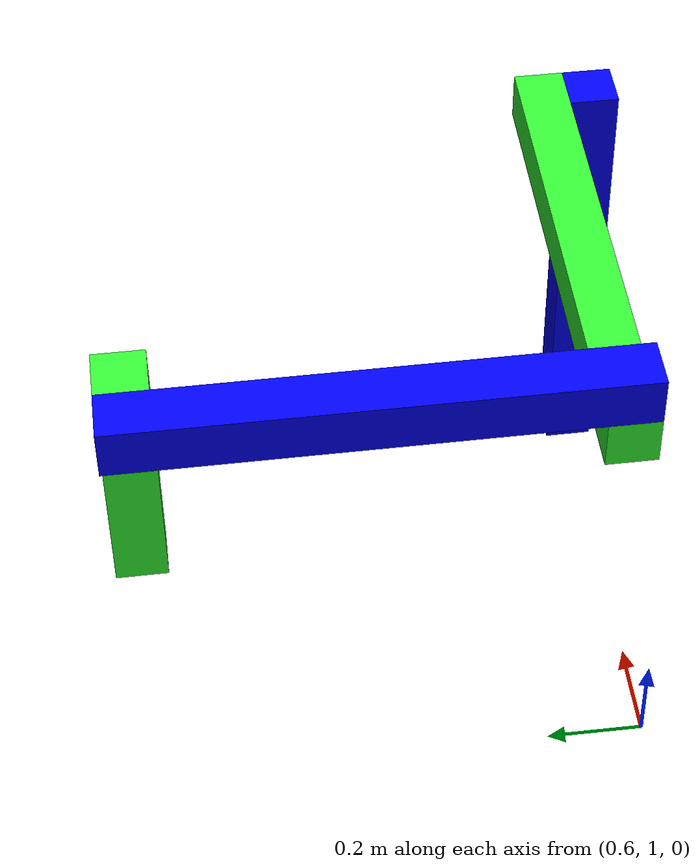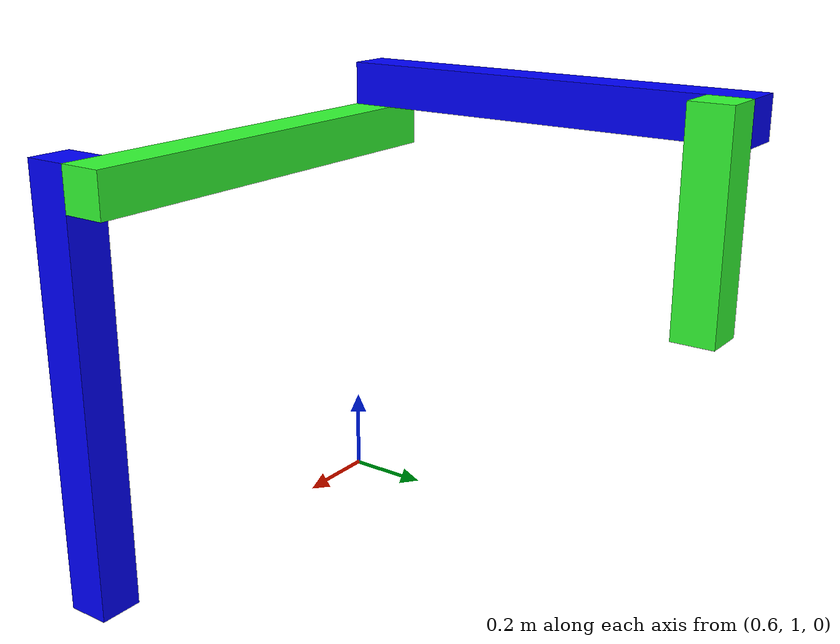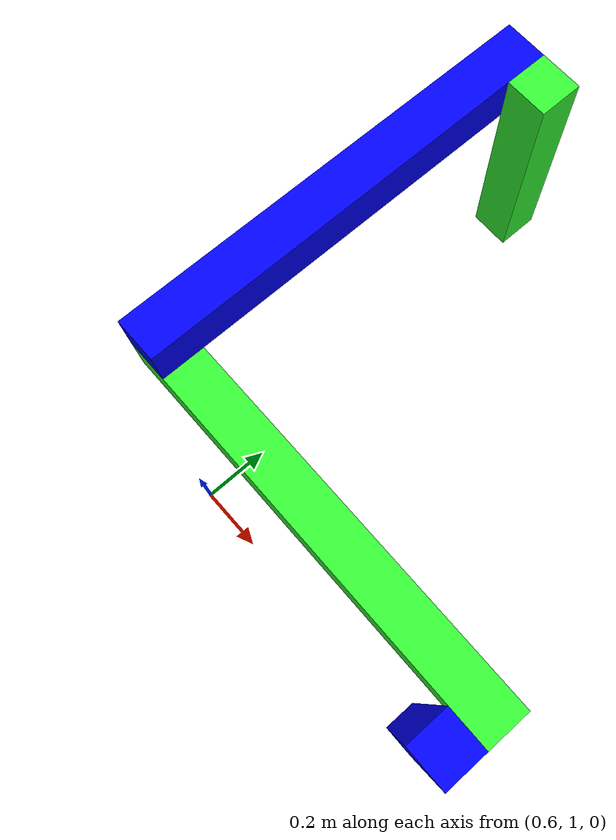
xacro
<?xml version="1.0"?>
<robot xmlns:xacro="http://www.ros.org/wiki/xacro" name="cartesian">

    <xacro:include filename="urdf_include.xacro" />

    <link name="world" />
    <joint name="joint1" type="fixed">
        <parent link="world" />
        <child link="joint1_link" />
        <origin xyz="1.5 1.0 0.5" rpy="0 0 0" />
        <limit lower="0" upper="0.5" velocity="100" effort="100"/>
    </joint>

    <xacro:property name="arm_length" value="1" />
    <link name="joint1_link">
        <visual>
            <origin rpy="0 0 0" xyz="0 0 0" />
            <geometry>
                <box size="0.1 0.1 ${arm_length}" />
            </geometry>
            <material name="blue">
                <color rgba="0 0 1 1" />
            </material>
        </visual>
        <collision>
            <origin rpy="0 0 0" xyz="0 0 0" />
            <geometry>
                <box size="0.1 0.1 ${arm_length}" />
            </geometry>
        </collision>
    </link>

    <joint name="joint2" type="prismatic">
        <origin xyz="-0.45 0.1  0.45" rpy="0 0 0" />
        <parent link="joint1_link" />
        <child link="joint2_link" />
        <axis xyz="1 0 0"/>
        <limit effort="100" velocity="1" lower="0" upper="0.8" />
    </joint>
    <link name="joint2_link">
        <visual>
            <origin rpy="0 0 0" xyz="0 0 0" />
            <geometry>
                <box size="${arm_length} 0.1 0.1" />
            </geometry>
            <material name="green">
                <color rgba="0.2 1 0.2 1" />
            </material>
        </visual>
        <collision>
            <origin rpy="0 0 0" xyz="0 0 0" />
            <geometry>
                <box size="${arm_length} 0.1 0.1" />
            </geometry>
        </collision>
    </link>
    <joint name="joint3" type="prismatic">
        <origin xyz="-0.45 0.45  0.1" rpy="0 0 0" />
        <parent link="joint2_link" />
        <child link="joint3_link" />
        <axis xyz="0 1 0"/>
        <limit effort="100" velocity="1" lower="0" upper="-0.8" />
    </joint>
    <link name="joint3_link">
        <visual>
            <origin rpy="0 0 0" xyz="0 0 0" />
            <geometry>
                <box size="0.1 ${arm_length} 0.1" />
            </geometry>
            <material name="blue">
                <color rgba="0 0 1 1" />
            </material>
        </visual>
        <collision>
            <origin rpy="0 0 0" xyz="0 0 0" />
            <geometry>
                <box size="0.1 ${arm_length} 0.1" />
            </geometry>
        </collision>
    </link>
    <joint name="joint4" type="prismatic">
        <origin xyz="0.1 0.45  -0.20" rpy="0 0 0" />
        <parent link="joint3_link" />
        <child link="end_link" />
        <axis xyz="0 0 1"/>
        <limit effort="100" velocity="1" lower="0" upper="0.4" />
    </joint>

    <xacro:property name="ender_length" value="0.5" />

    <link name="end_link">
        <visual>
            <origin rpy="0 0 0" xyz="0 0 0" />
            <geometry>
                <box size="0.1 0.1 ${ender_length}" />
            </geometry>
            <material name="green">
                <color rgba="0.2 1 0.2 1" />
            </material>
        </visual>
        <collision>
            <origin rpy="0 0 0" xyz="0 0 0" />
            <geometry>
                <box size="0.1 0.1 ${ender_length}" />
            </geometry>
        </collision>
    </link>

</robot>

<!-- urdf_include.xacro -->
<robot xmlns:xacro="http://www.ros.org/wiki/xacro" name="cartesian">

    <material name ="orange">
        <color rgba="1 0.3 0.1 1"/>
    </material>
    <material name="blue">
        <color rgba="0 0 1 1" />
    </material>
</robot>
